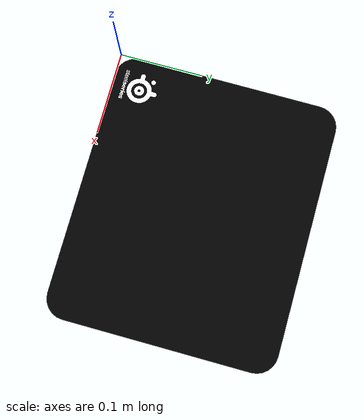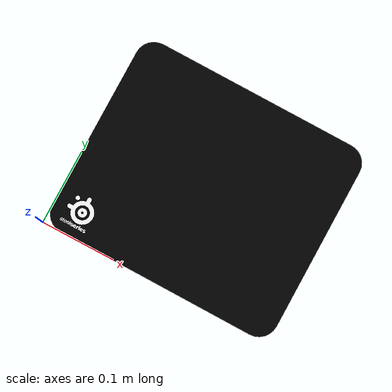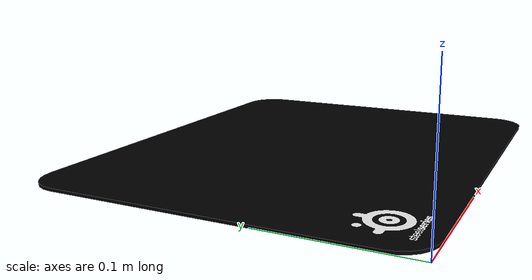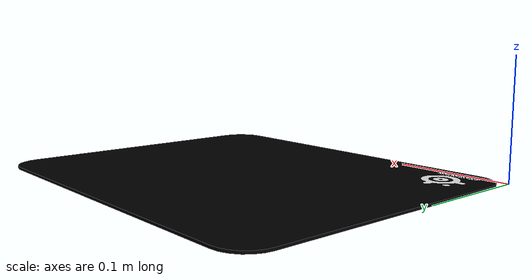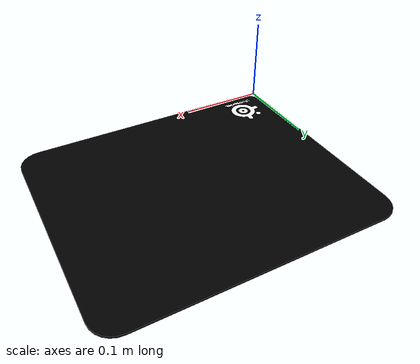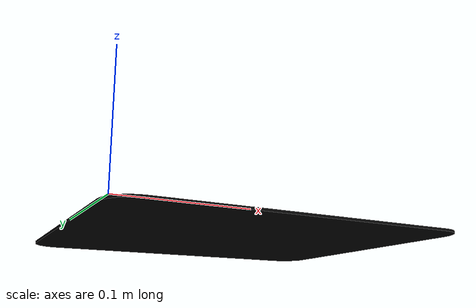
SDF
<?xml version='1.0'?>
<sdf version='1.5'>
  <model name='Mouse_Pad'>
    <static>true</static>
    <link name="link">
      <pose>0 0 0 0 0 0</pose>
      <visual name="visual">
            <geometry>
                <mesh>
                    <uri>model://mouse_pad/meshes/mouse_pad.dae</uri>
                </mesh>
            </geometry>

        </visual>
        <collision name="collision">
            <geometry>
                <mesh>
                   <uri>model://mouse_pad/meshes/mouse_pad.dae</uri>
                </mesh>
            </geometry>
        </collision>
    </link>
  </model>
</sdf>
